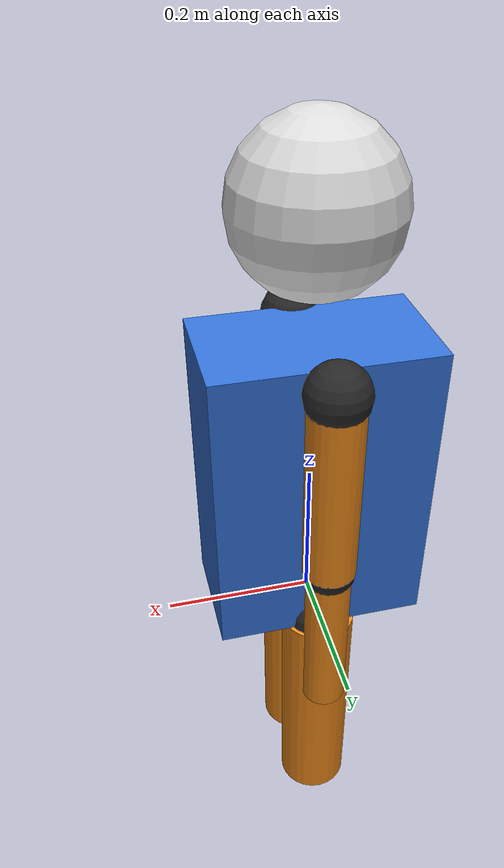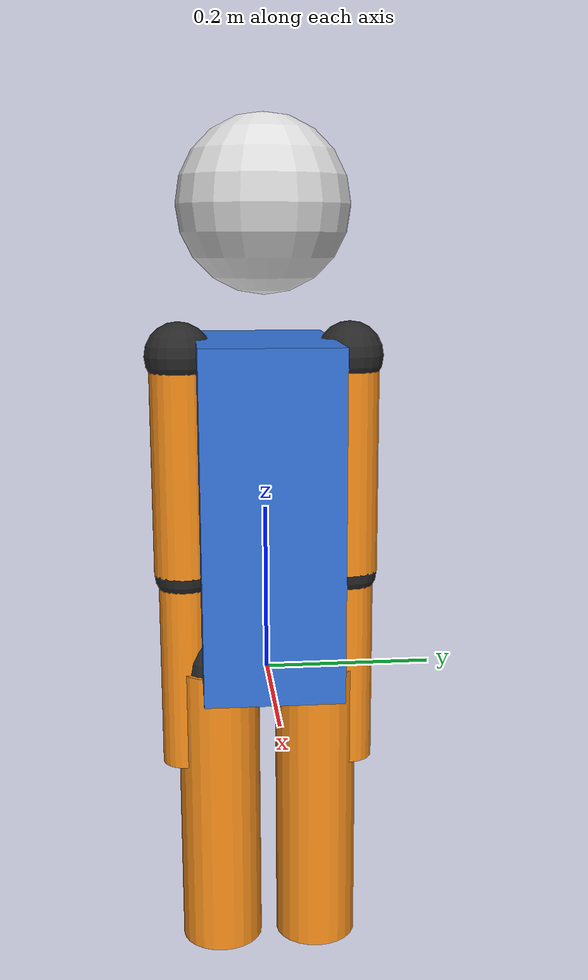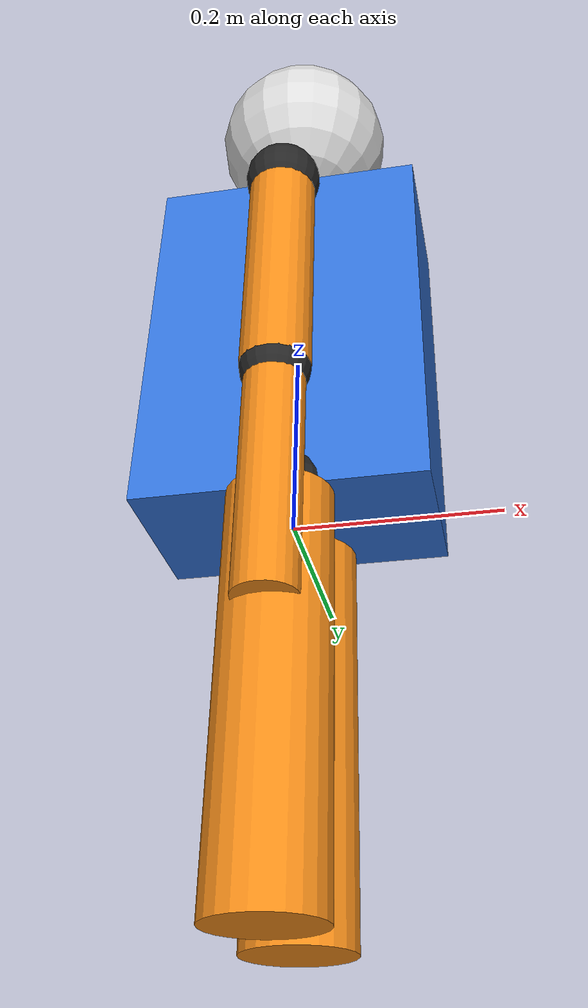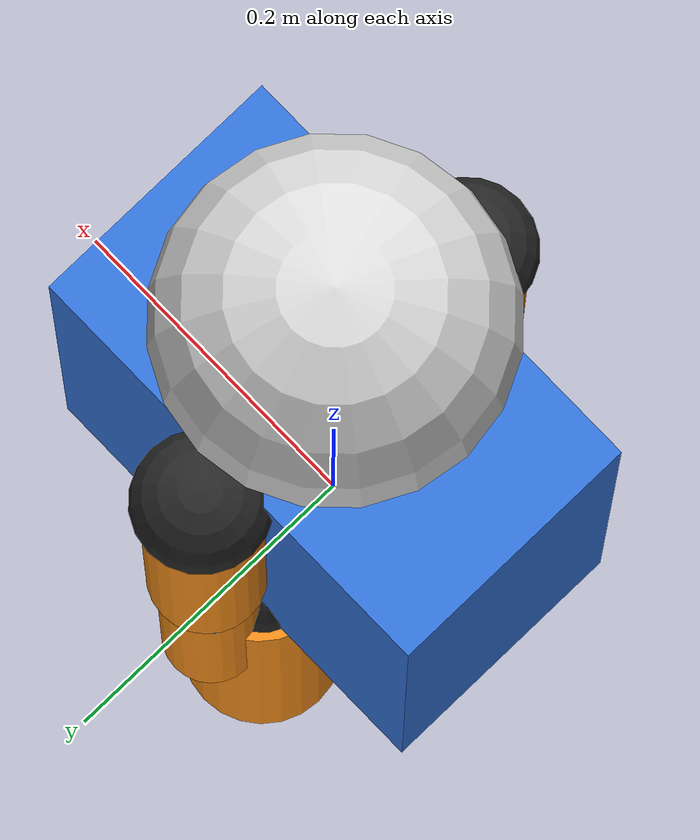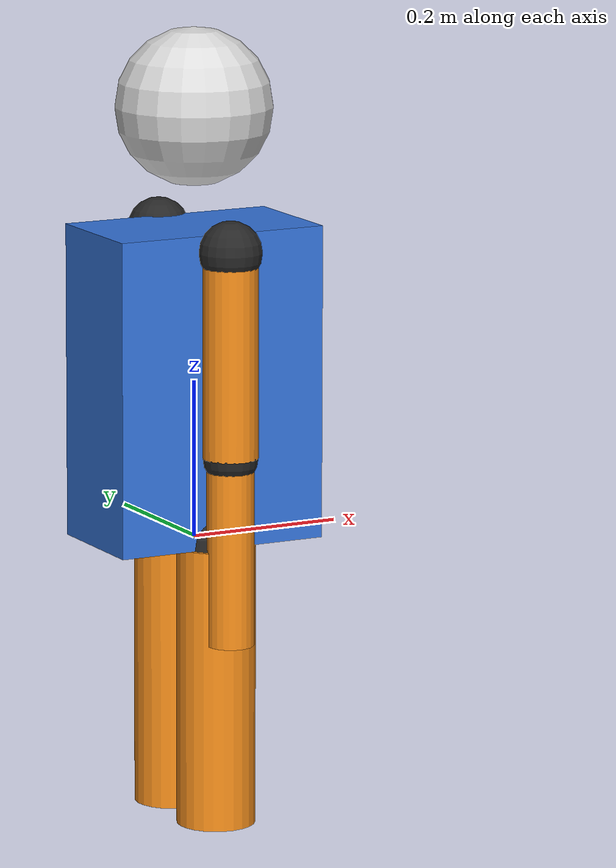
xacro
<?xml version="1.0"?>
<robot xmlns:xacro="http://www.ros.org/wiki/xacro" name="tutor_humanoid">

  <!-- materials -->
  <material name="body_blue"><color rgba="0.20 0.45 0.85 1.0"/></material>
  <material name="head_grey"><color rgba="0.85 0.85 0.85 1.0"/></material>
  <material name="limb_orange"><color rgba="0.95 0.55 0.10 1.0"/></material>
  <material name="joint_dark"><color rgba="0.15 0.15 0.15 1.0"/></material>

  <!-- shorthand for a single revolute joint -->
  <xacro:macro name="rev_joint" params="name parent child xyz axis lower upper">
    <joint name="${name}" type="revolute">
      <parent link="${parent}"/>
      <child link="${child}"/>
      <origin xyz="${xyz}" rpy="0 0 0"/>
      <axis xyz="${axis}"/>
      <limit effort="50" velocity="2.0" lower="${lower}" upper="${upper}"/>
    </joint>
  </xacro:macro>

  <!-- ============================================================ TORSO -->
  <link name="base_link">
    <visual>
      <origin xyz="0 0 0.20" rpy="0 0 0"/>
      <geometry><box size="0.28 0.16 0.40"/></geometry>
      <material name="body_blue"/>
    </visual>
  </link>

  <!-- ============================================================ HEAD -->
  <link name="head_link">
    <visual>
      <origin xyz="0 0 0.10" rpy="0 0 0"/>
      <geometry><sphere radius="0.10"/></geometry>
      <material name="head_grey"/>
    </visual>
  </link>
  <joint name="neck" type="fixed">
    <parent link="base_link"/>
    <child link="head_link"/>
    <origin xyz="0 0 0.45" rpy="0 0 0"/>
  </joint>

  <!-- ============================================================ ARMS -->
  <xacro:macro name="arm" params="side reflect">
    <!-- shoulder ball -->
    <link name="${side}_shoulder_link">
      <visual>
        <geometry><sphere radius="0.04"/></geometry>
        <material name="joint_dark"/>
      </visual>
    </link>

    <!-- upper arm -->
    <link name="${side}_upper_arm_link">
      <visual>
        <origin xyz="0 0 -0.13" rpy="0 0 0"/>
        <geometry><cylinder radius="0.035" length="0.26"/></geometry>
        <material name="limb_orange"/>
      </visual>
    </link>

    <!-- elbow ball -->
    <link name="${side}_elbow_link">
      <visual>
        <geometry><sphere radius="0.035"/></geometry>
        <material name="joint_dark"/>
      </visual>
    </link>

    <!-- forearm -->
    <link name="${side}_forearm_link">
      <visual>
        <origin xyz="0 0 -0.12" rpy="0 0 0"/>
        <geometry><cylinder radius="0.030" length="0.24"/></geometry>
        <material name="limb_orange"/>
      </visual>
    </link>

    <!-- joints -->
    <xacro:rev_joint name="${side}_shoulder_pitch"
                     parent="base_link" child="${side}_shoulder_link"
                     xyz="0 ${0.10 * reflect} 0.38"
                     axis="0 1 0" lower="-2.0" upper="2.0"/>

    <joint name="${side}_shoulder_link_to_upper" type="fixed">
      <parent link="${side}_shoulder_link"/>
      <child link="${side}_upper_arm_link"/>
      <origin xyz="0 0 0" rpy="0 0 0"/>
    </joint>

    <xacro:rev_joint name="${side}_elbow"
                     parent="${side}_upper_arm_link"
                     child="${side}_elbow_link"
                     xyz="0 0 -0.26"
                     axis="0 1 0" lower="0" upper="2.4"/>

    <joint name="${side}_elbow_link_to_forearm" type="fixed">
      <parent link="${side}_elbow_link"/>
      <child link="${side}_forearm_link"/>
      <origin xyz="0 0 0" rpy="0 0 0"/>
    </joint>
  </xacro:macro>

  <xacro:arm side="left"  reflect="1"/>
  <xacro:arm side="right" reflect="-1"/>

  <!-- ============================================================ LEGS -->
  <xacro:macro name="leg" params="side reflect">
    <link name="${side}_hip_link">
      <visual>
        <geometry><sphere radius="0.045"/></geometry>
        <material name="joint_dark"/>
      </visual>
    </link>
    <link name="${side}_thigh_link">
      <visual>
        <origin xyz="0 0 -0.18" rpy="0 0 0"/>
        <geometry><cylinder radius="0.05" length="0.36"/></geometry>
        <material name="limb_orange"/>
      </visual>
    </link>

    <xacro:rev_joint name="${side}_hip_pitch"
                     parent="base_link" child="${side}_hip_link"
                     xyz="0 ${0.06 * reflect} 0"
                     axis="0 1 0" lower="-1.5" upper="1.5"/>
    <joint name="${side}_hip_link_to_thigh" type="fixed">
      <parent link="${side}_hip_link"/>
      <child link="${side}_thigh_link"/>
      <origin xyz="0 0 0" rpy="0 0 0"/>
    </joint>
  </xacro:macro>

  <xacro:leg side="left"  reflect="1"/>
  <xacro:leg side="right" reflect="-1"/>

</robot>
